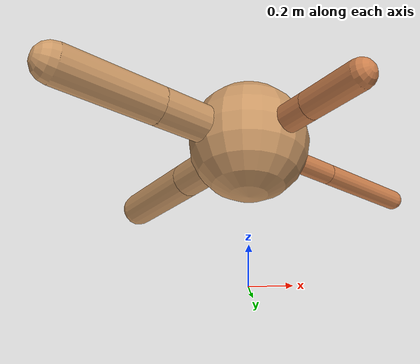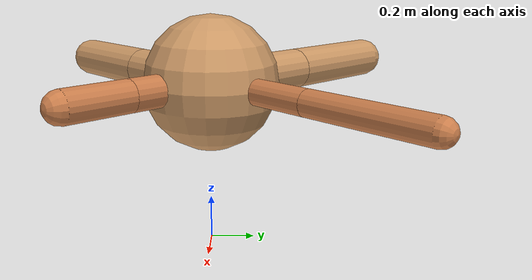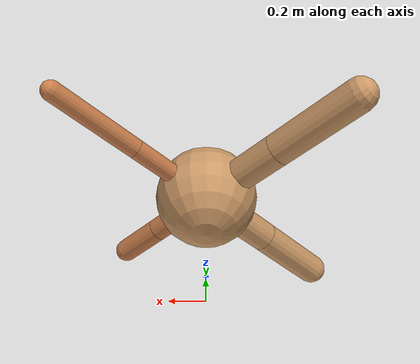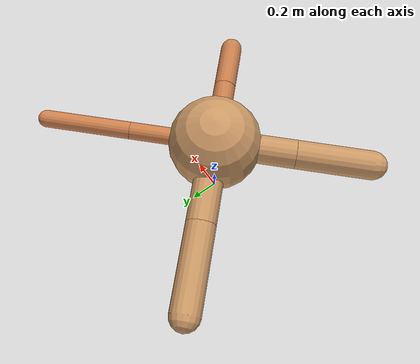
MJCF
<?xml version="1.0" ?>
<mujoco model="ant">

	<compiler angle="degree" coordinate="local" inertiafromgeom="true"/>

	<option integrator="RK4" timestep="0.01"/>

	<custom>

		<numeric data="0.0 0.0 0.55 1.0 0.0 0.0 0.0 0.0 1.0 0.0 -1.0 0.0 -1.0 0.0 1.0" name="init_qpos"/>

	</custom>

	<default>

		<joint armature="1" damping="1" limited="true"/>

		<geom conaffinity="0" condim="3" density="5.0" friction="1.5 0.1 0.1" margin="0.01" rgba="0.8 0.6 0.4 1"/>

	</default>

	<worldbody>

		<body name="torso" pos="0 0 0.75">

			<geom name="torso_geom" pos="0 0 0" size="0.30871713541298346" type="sphere"/>

			<!--joint armature="0" damping="0" limited="false" margin="0.01" name="root" pos="0 0 0" type="free"/-->

			<body name="front_left_leg" pos="0 0 0">

				<geom fromto="0 0 0 0.2 0.2 0" name="aux_1_geom" size="0.05764121724417381" type="capsule" rgba=".8 .5 .3 1"/>

				<body name="aux_1" pos="0.2 0.2 0">

					<joint axis="0 0 1" name="hip_1" pos="0.0 0.0 0.0" range="-40 40" type="hinge"/>

					<geom fromto="0 0 0 0.20245870334709878 0.20245870334709878 0" name="left_leg_geom" size="0.05764121724417381" type="capsule" rgba=".8 .5 .3 1"/>

					<body pos="0.20245870334709878 0.20245870334709878 0" name="front_left_foot">

						<joint axis="-1 1 0" name="ankle_1" pos="0.0 0.0 0.0" range="30 100" type="hinge"/>

						<geom fromto="0 0 0 0.40491740669419757 0.40491740669419757 0" name="left_ankle_geom" size="0.05764121724417381" type="capsule" rgba=".8 .5 .3 1"/>

					</body>

				</body>

			</body>

			<body name="front_right_leg" pos="0 0 0">

				<geom fromto="0 0 0 -0.2 0.2 0" name="aux_2_geom" size="0.09841896602471711" type="capsule"/>

				<body name="aux_2" pos="-0.2 0.2 0">

					<joint axis="0 0 1" name="hip_2" pos="0.0 0.0 0.0" range="-40 40" type="hinge"/>

					<geom fromto="0 0 0 -0.19849867978899693 0.19849867978899693 0" name="right_leg_geom" size="0.09841896602471711" type="capsule"/>

					<body pos="-0.19849867978899693 0.19849867978899693 0" name="front_right_foot">

						<joint axis="1 1 0" name="ankle_2" pos="0.0 0.0 0.0" range="-100 -30" type="hinge"/>

						<geom fromto="0 0 0 -0.39699735957799387 0.39699735957799387 0" name="right_ankle_geom" size="0.09841896602471711" type="capsule"/>

					</body>

				</body>

			</body>

			<body name="left_back_leg" pos="0 0 0">

				<geom fromto="0 0 0 -0.2 -0.2 0" name="aux_3_geom" size="0.09551294691554578" type="capsule"/>

				<body name="aux_3" pos="-0.2 -0.2 0">

					<joint axis="0 0 1" name="hip_3" pos="0.0 0.0 0.0" range="-40 40" type="hinge"/>

					<geom fromto="0 0 0 -0.1761829301271743 -0.1761829301271743 0" name="back_leg_geom" size="0.09551294691554578" type="capsule"/>

					<body pos="-0.1761829301271743 -0.1761829301271743 0" name="left_back_foot">

						<joint axis="-1 1 0" name="ankle_3" pos="0.0 0.0 0.0" range="-100 -30" type="hinge"/>

						<geom fromto="0 0 0 -0.3523658602543486 -0.3523658602543486 0" name="third_ankle_geom" size="0.09551294691554578" type="capsule"/>

					</body>

				</body>

			</body>

			<body name="right_back_leg" pos="0 0 0">

				<geom fromto="0 0 0 0.2 -0.2 0" name="aux_4_geom" size="0.07237192124239744" type="capsule" rgba=".8 .5 .3 1"/>

				<body name="aux_4" pos="0.2 -0.2 0">

					<joint axis="0 0 1" name="hip_4" pos="0.0 0.0 0.0" range="-40 40" type="hinge"/>

					<geom fromto="0 0 0 0.10984043790701943 -0.10984043790701943 0" name="rightback_leg_geom" size="0.07237192124239744" type="capsule" rgba=".8 .5 .3 1"/>

					<body pos="0.10984043790701943 -0.10984043790701943 0" name="right_back_foot">

						<joint axis="1 1 0" name="ankle_4" pos="0.0 0.0 0.0" range="30 100" type="hinge"/>

						<geom fromto="0 0 0 0.21968087581403886 -0.21968087581403886 0" name="fourth_ankle_geom" size="0.07237192124239744" type="capsule" rgba=".8 .5 .3 1"/>

					</body>

				</body>

			</body>

		</body>

	</worldbody>

	<actuator>

		<motor ctrllimited="true" ctrlrange="-1.0 1.0" joint="hip_4" gear="150"/>

		<motor ctrllimited="true" ctrlrange="-1.0 1.0" joint="ankle_4" gear="150"/>

		<motor ctrllimited="true" ctrlrange="-1.0 1.0" joint="hip_1" gear="150"/>

		<motor ctrllimited="true" ctrlrange="-1.0 1.0" joint="ankle_1" gear="150"/>

		<motor ctrllimited="true" ctrlrange="-1.0 1.0" joint="hip_2" gear="150"/>

		<motor ctrllimited="true" ctrlrange="-1.0 1.0" joint="ankle_2" gear="150"/>

		<motor ctrllimited="true" ctrlrange="-1.0 1.0" joint="hip_3" gear="150"/>

		<motor ctrllimited="true" ctrlrange="-1.0 1.0" joint="ankle_3" gear="150"/>

	</actuator>

</mujoco>
